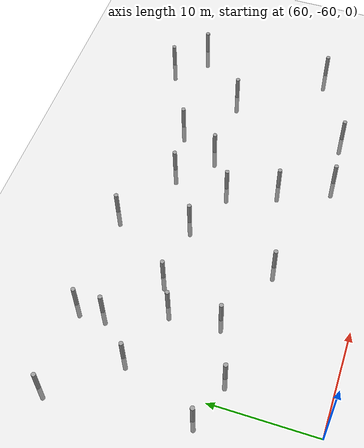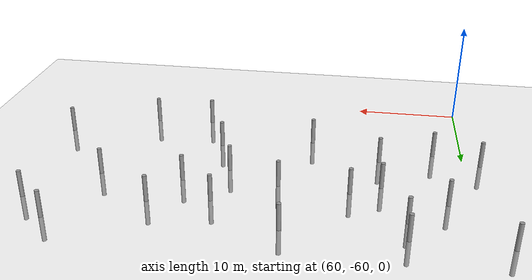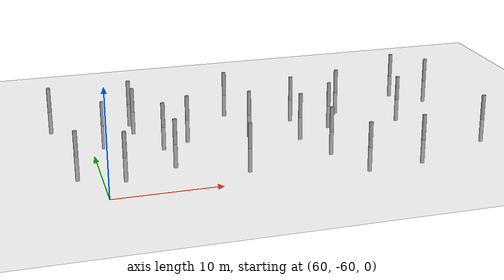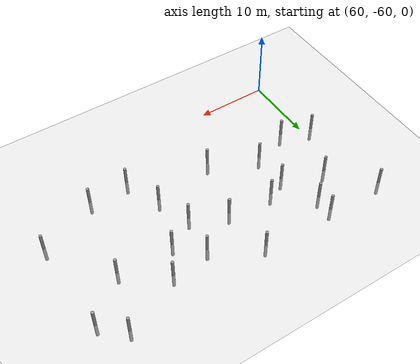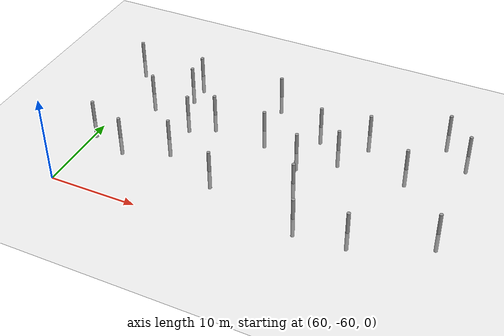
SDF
<sdf version="1.6">
 <world name="default">
  <model name="ground_plane">
   <static>1</static>
   <link name="link">
    <collision name="collision">
     <geometry><plane><normal>0 0 1</normal><size>100 100</size></plane></geometry>
     <surface><friction><ode><mu>100</mu><mu2>50</mu2></ode></friction></surface>
    </collision>
    <visual name="visual">
     <cast_shadows>0</cast_shadows>
     <geometry><plane><normal>0 0 1</normal><size>100 100</size></plane></geometry>
     <material>
      <script><uri>file://media/materials/scripts/gazebo.material</uri><name>Gazebo/Grey</name></script>
     </material>
    </visual>
   </link>
  </model>
  <model name="empty_pillars_10">
   <model name="empty_pillar_clone_10">
    <link name="link">
     <inertial>
      <mass>1</mass>
      <inertia><ixx>0.145833</ixx><ixy>0</ixy><ixz>0</ixz><iyy>0.145833</iyy><iyz>0</iyz><izz>0.125</izz></inertia>
     </inertial>
     <visual name="visual">
      <geometry><cylinder><radius>0.2</radius><length>5</length></cylinder></geometry>
      <material>
       <script><name>Gazebo/Grey</name><uri>file://media/materials/scripts/gazebo.material</uri></script>
       <shader type="vertex"><normal_map>__default__</normal_map></shader>
       <ambient>0.3 0.3 0.3 1</ambient>
       <diffuse>0.7 0.7 0.7 1</diffuse>
       <specular>0.01 0.01 0.01 1</specular>
       <emissive>0 0 0 1</emissive>
      </material>
     </visual>
     <collision name="collision">
      <geometry><cylinder><radius>0.05</radius><length>5</length></cylinder></geometry>
      <surface>
       <friction>
        <ode><mu>1</mu><mu2>1</mu2><fdir1>0 0 0</fdir1><slip1>0</slip1><slip2>0</slip2></ode>
        <torsional>
         <coefficient>1</coefficient>
         <patch_radius>0</patch_radius>
         <surface_radius>0</surface_radius>
         <use_patch_radius>1</use_patch_radius>
         <ode><slip>0</slip></ode>
        </torsional>
       </friction>
       <bounce><restitution_coefficient>0</restitution_coefficient><threshold>1e+06</threshold></bounce>
       <contact>
        <collide_without_contact>0</collide_without_contact>
        <collide_without_contact_bitmask>1</collide_without_contact_bitmask>
        <collide_bitmask>1</collide_bitmask>
        <ode>
         <soft_cfm>0</soft_cfm>
         <soft_erp>0.2</soft_erp>
         <kp>1e+13</kp>
         <kd>1</kd>
         <max_vel>0.01</max_vel>
         <min_depth>0</min_depth>
        </ode>
        <bullet>
         <split_impulse>1</split_impulse>
         <split_impulse_penetration_threshold>-0.01</split_impulse_penetration_threshold>
         <soft_cfm>0</soft_cfm>
         <soft_erp>0.2</soft_erp>
         <kp>1e+13</kp>
         <kd>1</kd>
        </bullet>
       </contact>
      </surface>
     </collision>
    </link>
    <static>0</static>
    <pose>13.5083 -16.8403 0 0 -0 0</pose>
   </model>
   <model name="empty_pillar_clone_11">
    <link name="link">
     <inertial>
      <mass>1</mass>
      <inertia><ixx>0.145833</ixx><ixy>0</ixy><ixz>0</ixz><iyy>0.145833</iyy><iyz>0</iyz><izz>0.125</izz></inertia>
     </inertial>
     <visual name="visual">
      <geometry><cylinder><radius>0.2</radius><length>5</length></cylinder></geometry>
      <material>
       <script><name>Gazebo/Grey</name><uri>file://media/materials/scripts/gazebo.material</uri></script>
       <shader type="vertex"><normal_map>__default__</normal_map></shader>
       <ambient>0.3 0.3 0.3 1</ambient>
       <diffuse>0.7 0.7 0.7 1</diffuse>
       <specular>0.01 0.01 0.01 1</specular>
       <emissive>0 0 0 1</emissive>
      </material>
     </visual>
     <collision name="collision">
      <geometry><cylinder><radius>0.05</radius><length>5</length></cylinder></geometry>
      <surface>
       <friction>
        <ode><mu>1</mu><mu2>1</mu2><fdir1>0 0 0</fdir1><slip1>0</slip1><slip2>0</slip2></ode>
        <torsional>
         <coefficient>1</coefficient>
         <patch_radius>0</patch_radius>
         <surface_radius>0</surface_radius>
         <use_patch_radius>1</use_patch_radius>
         <ode><slip>0</slip></ode>
        </torsional>
       </friction>
       <bounce><restitution_coefficient>0</restitution_coefficient><threshold>1e+06</threshold></bounce>
       <contact>
        <collide_without_contact>0</collide_without_contact>
        <collide_without_contact_bitmask>1</collide_without_contact_bitmask>
        <collide_bitmask>1</collide_bitmask>
        <ode>
         <soft_cfm>0</soft_cfm>
         <soft_erp>0.2</soft_erp>
         <kp>1e+13</kp>
         <kd>1</kd>
         <max_vel>0.01</max_vel>
         <min_depth>0</min_depth>
        </ode>
        <bullet>
         <split_impulse>1</split_impulse>
         <split_impulse_penetration_threshold>-0.01</split_impulse_penetration_threshold>
         <soft_cfm>0</soft_cfm>
         <soft_erp>0.2</soft_erp>
         <kp>1e+13</kp>
         <kd>1</kd>
        </bullet>
       </contact>
      </surface>
     </collision>
    </link>
    <static>0</static>
    <pose>7.98536 -17.8403 0 0 -0 0</pose>
   </model>
   <model name="empty_pillar_clone_12">
    <link name="link">
     <inertial>
      <mass>1</mass>
      <inertia><ixx>0.145833</ixx><ixy>0</ixy><ixz>0</ixz><iyy>0.145833</iyy><iyz>0</iyz><izz>0.125</izz></inertia>
     </inertial>
     <visual name="visual">
      <geometry><cylinder><radius>0.2</radius><length>5</length></cylinder></geometry>
      <material>
       <script><name>Gazebo/Grey</name><uri>file://media/materials/scripts/gazebo.material</uri></script>
       <shader type="vertex"><normal_map>__default__</normal_map></shader>
       <ambient>0.3 0.3 0.3 1</ambient>
       <diffuse>0.7 0.7 0.7 1</diffuse>
       <specular>0.01 0.01 0.01 1</specular>
       <emissive>0 0 0 1</emissive>
      </material>
     </visual>
     <collision name="collision">
      <geometry><cylinder><radius>0.05</radius><length>5</length></cylinder></geometry>
      <surface>
       <friction>
        <ode><mu>1</mu><mu2>1</mu2><fdir1>0 0 0</fdir1><slip1>0</slip1><slip2>0</slip2></ode>
        <torsional>
         <coefficient>1</coefficient>
         <patch_radius>0</patch_radius>
         <surface_radius>0</surface_radius>
         <use_patch_radius>1</use_patch_radius>
         <ode><slip>0</slip></ode>
        </torsional>
       </friction>
       <bounce><restitution_coefficient>0</restitution_coefficient><threshold>1e+06</threshold></bounce>
       <contact>
        <collide_without_contact>0</collide_without_contact>
        <collide_without_contact_bitmask>1</collide_without_contact_bitmask>
        <collide_bitmask>1</collide_bitmask>
        <ode>
         <soft_cfm>0</soft_cfm>
         <soft_erp>0.2</soft_erp>
         <kp>1e+13</kp>
         <kd>1</kd>
         <max_vel>0.01</max_vel>
         <min_depth>0</min_depth>
        </ode>
        <bullet>
         <split_impulse>1</split_impulse>
         <split_impulse_penetration_threshold>-0.01</split_impulse_penetration_threshold>
         <soft_cfm>0</soft_cfm>
         <soft_erp>0.2</soft_erp>
         <kp>1e+13</kp>
         <kd>1</kd>
        </bullet>
       </contact>
      </surface>
     </collision>
    </link>
    <static>0</static>
    <pose>-4.01464 -20.8403 0 0 -0 0</pose>
   </model>
   <model name="empty_pillar_clone_13">
    <link name="link">
     <inertial>
      <mass>1</mass>
      <inertia><ixx>0.145833</ixx><ixy>0</ixy><ixz>0</ixz><iyy>0.145833</iyy><iyz>0</iyz><izz>0.125</izz></inertia>
     </inertial>
     <visual name="visual">
      <geometry><cylinder><radius>0.2</radius><length>5</length></cylinder></geometry>
      <material>
       <script><name>Gazebo/Grey</name><uri>file://media/materials/scripts/gazebo.material</uri></script>
       <shader type="vertex"><normal_map>__default__</normal_map></shader>
       <ambient>0.3 0.3 0.3 1</ambient>
       <diffuse>0.7 0.7 0.7 1</diffuse>
       <specular>0.01 0.01 0.01 1</specular>
       <emissive>0 0 0 1</emissive>
      </material>
     </visual>
     <collision name="collision">
      <geometry><cylinder><radius>0.05</radius><length>5</length></cylinder></geometry>
      <surface>
       <friction>
        <ode><mu>1</mu><mu2>1</mu2><fdir1>0 0 0</fdir1><slip1>0</slip1><slip2>0</slip2></ode>
        <torsional>
         <coefficient>1</coefficient>
         <patch_radius>0</patch_radius>
         <surface_radius>0</surface_radius>
         <use_patch_radius>1</use_patch_radius>
         <ode><slip>0</slip></ode>
        </torsional>
       </friction>
       <bounce><restitution_coefficient>0</restitution_coefficient><threshold>1e+06</threshold></bounce>
       <contact>
        <collide_without_contact>0</collide_without_contact>
        <collide_without_contact_bitmask>1</collide_without_contact_bitmask>
        <collide_bitmask>1</collide_bitmask>
        <ode>
         <soft_cfm>0</soft_cfm>
         <soft_erp>0.2</soft_erp>
         <kp>1e+13</kp>
         <kd>1</kd>
         <max_vel>0.01</max_vel>
         <min_depth>0</min_depth>
        </ode>
        <bullet>
         <split_impulse>1</split_impulse>
         <split_impulse_penetration_threshold>-0.01</split_impulse_penetration_threshold>
         <soft_cfm>0</soft_cfm>
         <soft_erp>0.2</soft_erp>
         <kp>1e+13</kp>
         <kd>1</kd>
        </bullet>
       </contact>
      </surface>
     </collision>
    </link>
    <static>0</static>
    <pose>-9.01464 -14.4259 0 0 -0 0</pose>
   </model>
   <model name="empty_pillar_clone_33">
    <link name="link">
     <inertial>
      <mass>1</mass>
      <inertia><ixx>0.145833</ixx><ixy>0</ixy><ixz>0</ixz><iyy>0.145833</iyy><iyz>0</iyz><izz>0.125</izz></inertia>
     </inertial>
     <visual name="visual">
      <geometry><cylinder><radius>0.2</radius><length>5</length></cylinder></geometry>
      <material>
       <script><name>Gazebo/Grey</name><uri>file://media/materials/scripts/gazebo.material</uri></script>
       <shader type="vertex"><normal_map>__default__</normal_map></shader>
       <ambient>0.3 0.3 0.3 1</ambient>
       <diffuse>0.7 0.7 0.7 1</diffuse>
       <specular>0.01 0.01 0.01 1</specular>
       <emissive>0 0 0 1</emissive>
      </material>
     </visual>
     <collision name="collision">
      <geometry><cylinder><radius>0.05</radius><length>5</length></cylinder></geometry>
      <surface>
       <friction>
        <ode><mu>1</mu><mu2>1</mu2><fdir1>0 0 0</fdir1><slip1>0</slip1><slip2>0</slip2></ode>
        <torsional>
         <coefficient>1</coefficient>
         <patch_radius>0</patch_radius>
         <surface_radius>0</surface_radius>
         <use_patch_radius>1</use_patch_radius>
         <ode><slip>0</slip></ode>
        </torsional>
       </friction>
       <bounce><restitution_coefficient>0</restitution_coefficient><threshold>1e+06</threshold></bounce>
       <contact>
        <collide_without_contact>0</collide_without_contact>
        <collide_without_contact_bitmask>1</collide_without_contact_bitmask>
        <collide_bitmask>1</collide_bitmask>
        <ode>
         <soft_cfm>0</soft_cfm>
         <soft_erp>0.2</soft_erp>
         <kp>1e+13</kp>
         <kd>1</kd>
         <max_vel>0.01</max_vel>
         <min_depth>0</min_depth>
        </ode>
        <bullet>
         <split_impulse>1</split_impulse>
         <split_impulse_penetration_threshold>-0.01</split_impulse_penetration_threshold>
         <soft_cfm>0</soft_cfm>
         <soft_erp>0.2</soft_erp>
         <kp>1e+13</kp>
         <kd>1</kd>
        </bullet>
       </contact>
      </surface>
     </collision>
    </link>
    <static>0</static>
    <pose>21.5621 -13.0704 0 0 -0 0</pose>
   </model>
   <model name="empty_pillar_clone_34">
    <link name="link">
     <inertial>
      <mass>1</mass>
      <inertia><ixx>0.145833</ixx><ixy>0</ixy><ixz>0</ixz><iyy>0.145833</iyy><iyz>0</iyz><izz>0.125</izz></inertia>
     </inertial>
     <visual name="visual">
      <geometry><cylinder><radius>0.2</radius><length>5</length></cylinder></geometry>
      <material>
       <script><name>Gazebo/Grey</name><uri>file://media/materials/scripts/gazebo.material</uri></script>
       <shader type="vertex"><normal_map>__default__</normal_map></shader>
       <ambient>0.3 0.3 0.3 1</ambient>
       <diffuse>0.7 0.7 0.7 1</diffuse>
       <specular>0.01 0.01 0.01 1</specular>
       <emissive>0 0 0 1</emissive>
      </material>
     </visual>
     <collision name="collision">
      <geometry><cylinder><radius>0.05</radius><length>5</length></cylinder></geometry>
      <surface>
       <friction>
        <ode><mu>1</mu><mu2>1</mu2><fdir1>0 0 0</fdir1><slip1>0</slip1><slip2>0</slip2></ode>
        <torsional>
         <coefficient>1</coefficient>
         <patch_radius>0</patch_radius>
         <surface_radius>0</surface_radius>
         <use_patch_radius>1</use_patch_radius>
         <ode><slip>0</slip></ode>
        </torsional>
       </friction>
       <bounce><restitution_coefficient>0</restitution_coefficient><threshold>1e+06</threshold></bounce>
       <contact>
        <collide_without_contact>0</collide_without_contact>
        <collide_without_contact_bitmask>1</collide_without_contact_bitmask>
        <collide_bitmask>1</collide_bitmask>
        <ode>
         <soft_cfm>0</soft_cfm>
         <soft_erp>0.2</soft_erp>
         <kp>1e+13</kp>
         <kd>1</kd>
         <max_vel>0.01</max_vel>
         <min_depth>0</min_depth>
        </ode>
        <bullet>
         <split_impulse>1</split_impulse>
         <split_impulse_penetration_threshold>-0.01</split_impulse_penetration_threshold>
         <soft_cfm>0</soft_cfm>
         <soft_erp>0.2</soft_erp>
         <kp>1e+13</kp>
         <kd>1</kd>
        </bullet>
       </contact>
      </surface>
     </collision>
    </link>
    <static>0</static>
    <pose>19.0861 -20.8946 0 0 -0 0</pose>
   </model>
   <model name="empty_pillar_clone_4">
    <link name="link">
     <inertial>
      <mass>1</mass>
      <inertia><ixx>0.145833</ixx><ixy>0</ixy><ixz>0</ixz><iyy>0.145833</iyy><iyz>0</iyz><izz>0.125</izz></inertia>
     </inertial>
     <visual name="visual">
      <geometry><cylinder><radius>0.2</radius><length>5</length></cylinder></geometry>
      <material>
       <script><name>Gazebo/Grey</name><uri>file://media/materials/scripts/gazebo.material</uri></script>
       <shader type="vertex"><normal_map>__default__</normal_map></shader>
       <ambient>0.3 0.3 0.3 1</ambient>
       <diffuse>0.7 0.7 0.7 1</diffuse>
       <specular>0.01 0.01 0.01 1</specular>
       <emissive>0 0 0 1</emissive>
      </material>
     </visual>
     <collision name="collision">
      <geometry><cylinder><radius>0.05</radius><length>5</length></cylinder></geometry>
      <surface>
       <friction>
        <ode><mu>1</mu><mu2>1</mu2><fdir1>0 0 0</fdir1><slip1>0</slip1><slip2>0</slip2></ode>
        <torsional>
         <coefficient>1</coefficient>
         <patch_radius>0</patch_radius>
         <surface_radius>0</surface_radius>
         <use_patch_radius>1</use_patch_radius>
         <ode><slip>0</slip></ode>
        </torsional>
       </friction>
       <bounce><restitution_coefficient>0</restitution_coefficient><threshold>1e+06</threshold></bounce>
       <contact>
        <collide_without_contact>0</collide_without_contact>
        <collide_without_contact_bitmask>1</collide_without_contact_bitmask>
        <collide_bitmask>1</collide_bitmask>
        <ode>
         <soft_cfm>0</soft_cfm>
         <soft_erp>0.2</soft_erp>
         <kp>1e+13</kp>
         <kd>1</kd>
         <max_vel>0.01</max_vel>
         <min_depth>0</min_depth>
        </ode>
        <bullet>
         <split_impulse>1</split_impulse>
         <split_impulse_penetration_threshold>-0.01</split_impulse_penetration_threshold>
         <soft_cfm>0</soft_cfm>
         <soft_erp>0.2</soft_erp>
         <kp>1e+13</kp>
         <kd>1</kd>
        </bullet>
       </contact>
      </surface>
     </collision>
    </link>
    <static>0</static>
    <pose>1.48428 -14.2998 0 0 -0 0</pose>
   </model>
   <model name="empty_pillar_clone_40">
    <link name="link">
     <inertial>
      <mass>1</mass>
      <inertia><ixx>0.145833</ixx><ixy>0</ixy><ixz>0</ixz><iyy>0.145833</iyy><iyz>0</iyz><izz>0.125</izz></inertia>
     </inertial>
     <visual name="visual">
      <geometry><cylinder><radius>0.2</radius><length>5</length></cylinder></geometry>
      <material>
       <script><name>Gazebo/Grey</name><uri>file://media/materials/scripts/gazebo.material</uri></script>
       <shader type="vertex"><normal_map>__default__</normal_map></shader>
       <ambient>0.3 0.3 0.3 1</ambient>
       <diffuse>0.7 0.7 0.7 1</diffuse>
       <specular>0.01 0.01 0.01 1</specular>
       <emissive>0 0 0 1</emissive>
      </material>
     </visual>
     <collision name="collision">
      <geometry><cylinder><radius>0.05</radius><length>5</length></cylinder></geometry>
      <surface>
       <friction>
        <ode><mu>1</mu><mu2>1</mu2><fdir1>0 0 0</fdir1><slip1>0</slip1><slip2>0</slip2></ode>
        <torsional>
         <coefficient>1</coefficient>
         <patch_radius>0</patch_radius>
         <surface_radius>0</surface_radius>
         <use_patch_radius>1</use_patch_radius>
         <ode><slip>0</slip></ode>
        </torsional>
       </friction>
       <bounce><restitution_coefficient>0</restitution_coefficient><threshold>1e+06</threshold></bounce>
       <contact>
        <collide_without_contact>0</collide_without_contact>
        <collide_without_contact_bitmask>1</collide_without_contact_bitmask>
        <collide_bitmask>1</collide_bitmask>
        <ode>
         <soft_cfm>0</soft_cfm>
         <soft_erp>0.2</soft_erp>
         <kp>1e+13</kp>
         <kd>1</kd>
         <max_vel>0.01</max_vel>
         <min_depth>0</min_depth>
        </ode>
        <bullet>
         <split_impulse>1</split_impulse>
         <split_impulse_penetration_threshold>-0.01</split_impulse_penetration_threshold>
         <soft_cfm>0</soft_cfm>
         <soft_erp>0.2</soft_erp>
         <kp>1e+13</kp>
         <kd>1</kd>
        </bullet>
       </contact>
      </surface>
     </collision>
    </link>
    <static>0</static>
    <pose>-17.318 -14.4851 0 0 -0 0</pose>
   </model>
   <model name="empty_pillar_clone_42">
    <link name="link">
     <inertial>
      <mass>1</mass>
      <inertia><ixx>0.145833</ixx><ixy>0</ixy><ixz>0</ixz><iyy>0.145833</iyy><iyz>0</iyz><izz>0.125</izz></inertia>
     </inertial>
     <visual name="visual">
      <geometry><cylinder><radius>0.2</radius><length>5</length></cylinder></geometry>
      <material>
       <script><name>Gazebo/Grey</name><uri>file://media/materials/scripts/gazebo.material</uri></script>
       <shader type="vertex"><normal_map>__default__</normal_map></shader>
       <ambient>0.3 0.3 0.3 1</ambient>
       <diffuse>0.7 0.7 0.7 1</diffuse>
       <specular>0.01 0.01 0.01 1</specular>
       <emissive>0 0 0 1</emissive>
      </material>
     </visual>
     <collision name="collision">
      <geometry><cylinder><radius>0.05</radius><length>5</length></cylinder></geometry>
      <surface>
       <friction>
        <ode><mu>1</mu><mu2>1</mu2><fdir1>0 0 0</fdir1><slip1>0</slip1><slip2>0</slip2></ode>
        <torsional>
         <coefficient>1</coefficient>
         <patch_radius>0</patch_radius>
         <surface_radius>0</surface_radius>
         <use_patch_radius>1</use_patch_radius>
         <ode><slip>0</slip></ode>
        </torsional>
       </friction>
       <bounce><restitution_coefficient>0</restitution_coefficient><threshold>1e+06</threshold></bounce>
       <contact>
        <collide_without_contact>0</collide_without_contact>
        <collide_without_contact_bitmask>1</collide_without_contact_bitmask>
        <collide_bitmask>1</collide_bitmask>
        <ode>
         <soft_cfm>0</soft_cfm>
         <soft_erp>0.2</soft_erp>
         <kp>1e+13</kp>
         <kd>1</kd>
         <max_vel>0.01</max_vel>
         <min_depth>0</min_depth>
        </ode>
        <bullet>
         <split_impulse>1</split_impulse>
         <split_impulse_penetration_threshold>-0.01</split_impulse_penetration_threshold>
         <soft_cfm>0</soft_cfm>
         <soft_erp>0.2</soft_erp>
         <kp>1e+13</kp>
         <kd>1</kd>
        </bullet>
       </contact>
      </surface>
     </collision>
    </link>
    <static>0</static>
    <pose>-12.5409 -20.2416 0 0 -0 0</pose>
   </model>
   <model name="empty_pillar_clone_44">
    <link name="link">
     <inertial>
      <mass>1</mass>
      <inertia><ixx>0.145833</ixx><ixy>0</ixy><ixz>0</ixz><iyy>0.145833</iyy><iyz>0</iyz><izz>0.125</izz></inertia>
     </inertial>
     <visual name="visual">
      <geometry><cylinder><radius>0.2</radius><length>5</length></cylinder></geometry>
      <material>
       <script><name>Gazebo/Grey</name><uri>file://media/materials/scripts/gazebo.material</uri></script>
       <shader type="vertex"><normal_map>__default__</normal_map></shader>
       <ambient>0.3 0.3 0.3 1</ambient>
       <diffuse>0.7 0.7 0.7 1</diffuse>
       <specular>0.01 0.01 0.01 1</specular>
       <emissive>0 0 0 1</emissive>
      </material>
     </visual>
     <collision name="collision">
      <geometry><cylinder><radius>0.05</radius><length>5</length></cylinder></geometry>
      <surface>
       <friction>
        <ode><mu>1</mu><mu2>1</mu2><fdir1>0 0 0</fdir1><slip1>0</slip1><slip2>0</slip2></ode>
        <torsional>
         <coefficient>1</coefficient>
         <patch_radius>0</patch_radius>
         <surface_radius>0</surface_radius>
         <use_patch_radius>1</use_patch_radius>
         <ode><slip>0</slip></ode>
        </torsional>
       </friction>
       <bounce><restitution_coefficient>0</restitution_coefficient><threshold>1e+06</threshold></bounce>
       <contact>
        <collide_without_contact>0</collide_without_contact>
        <collide_without_contact_bitmask>1</collide_without_contact_bitmask>
        <collide_bitmask>1</collide_bitmask>
        <ode>
         <soft_cfm>0</soft_cfm>
         <soft_erp>0.2</soft_erp>
         <kp>1e+13</kp>
         <kd>1</kd>
         <max_vel>0.01</max_vel>
         <min_depth>0</min_depth>
        </ode>
        <bullet>
         <split_impulse>1</split_impulse>
         <split_impulse_penetration_threshold>-0.01</split_impulse_penetration_threshold>
         <soft_cfm>0</soft_cfm>
         <soft_erp>0.2</soft_erp>
         <kp>1e+13</kp>
         <kd>1</kd>
        </bullet>
       </contact>
      </surface>
     </collision>
    </link>
    <static>0</static>
    <pose>-6.78285 -22.2729 0 0 -0 0</pose>
   </model>
   <model name="empty_pillar_clone_45">
    <link name="link">
     <inertial>
      <mass>1</mass>
      <inertia><ixx>0.145833</ixx><ixy>0</ixy><ixz>0</ixz><iyy>0.145833</iyy><iyz>0</iyz><izz>0.125</izz></inertia>
     </inertial>
     <visual name="visual">
      <geometry><cylinder><radius>0.2</radius><length>5</length></cylinder></geometry>
      <material>
       <script><name>Gazebo/Grey</name><uri>file://media/materials/scripts/gazebo.material</uri></script>
       <shader type="vertex"><normal_map>__default__</normal_map></shader>
       <ambient>0.3 0.3 0.3 1</ambient>
       <diffuse>0.7 0.7 0.7 1</diffuse>
       <specular>0.01 0.01 0.01 1</specular>
       <emissive>0 0 0 1</emissive>
      </material>
     </visual>
     <collision name="collision">
      <geometry><cylinder><radius>0.05</radius><length>5</length></cylinder></geometry>
      <surface>
       <friction>
        <ode><mu>1</mu><mu2>1</mu2><fdir1>0 0 0</fdir1><slip1>0</slip1><slip2>0</slip2></ode>
        <torsional>
         <coefficient>1</coefficient>
         <patch_radius>0</patch_radius>
         <surface_radius>0</surface_radius>
         <use_patch_radius>1</use_patch_radius>
         <ode><slip>0</slip></ode>
        </torsional>
       </friction>
       <bounce><restitution_coefficient>0</restitution_coefficient><threshold>1e+06</threshold></bounce>
       <contact>
        <collide_without_contact>0</collide_without_contact>
        <collide_without_contact_bitmask>1</collide_without_contact_bitmask>
        <collide_bitmask>1</collide_bitmask>
        <ode>
         <soft_cfm>0</soft_cfm>
         <soft_erp>0.2</soft_erp>
         <kp>1e+13</kp>
         <kd>1</kd>
         <max_vel>0.01</max_vel>
         <min_depth>0</min_depth>
        </ode>
        <bullet>
         <split_impulse>1</split_impulse>
         <split_impulse_penetration_threshold>-0.01</split_impulse_penetration_threshold>
         <soft_cfm>0</soft_cfm>
         <soft_erp>0.2</soft_erp>
         <kp>1e+13</kp>
         <kd>1</kd>
        </bullet>
       </contact>
      </surface>
     </collision>
    </link>
    <static>0</static>
    <pose>-9.01076 -16.9307 0 0 -0 0</pose>
   </model>
   <model name="empty_pillar_clone_46">
    <link name="link">
     <inertial>
      <mass>1</mass>
      <inertia><ixx>0.145833</ixx><ixy>0</ixy><ixz>0</ixz><iyy>0.145833</iyy><iyz>0</iyz><izz>0.125</izz></inertia>
     </inertial>
     <visual name="visual">
      <geometry><cylinder><radius>0.2</radius><length>5</length></cylinder></geometry>
      <material>
       <script><name>Gazebo/Grey</name><uri>file://media/materials/scripts/gazebo.material</uri></script>
       <shader type="vertex"><normal_map>__default__</normal_map></shader>
       <ambient>0.3 0.3 0.3 1</ambient>
       <diffuse>0.7 0.7 0.7 1</diffuse>
       <specular>0.01 0.01 0.01 1</specular>
       <emissive>0 0 0 1</emissive>
      </material>
     </visual>
     <collision name="collision">
      <geometry><cylinder><radius>0.05</radius><length>5</length></cylinder></geometry>
      <surface>
       <friction>
        <ode><mu>1</mu><mu2>1</mu2><fdir1>0 0 0</fdir1><slip1>0</slip1><slip2>0</slip2></ode>
        <torsional>
         <coefficient>1</coefficient>
         <patch_radius>0</patch_radius>
         <surface_radius>0</surface_radius>
         <use_patch_radius>1</use_patch_radius>
         <ode><slip>0</slip></ode>
        </torsional>
       </friction>
       <bounce><restitution_coefficient>0</restitution_coefficient><threshold>1e+06</threshold></bounce>
       <contact>
        <collide_without_contact>0</collide_without_contact>
        <collide_without_contact_bitmask>1</collide_without_contact_bitmask>
        <collide_bitmask>1</collide_bitmask>
        <ode>
         <soft_cfm>0</soft_cfm>
         <soft_erp>0.2</soft_erp>
         <kp>1e+13</kp>
         <kd>1</kd>
         <max_vel>0.01</max_vel>
         <min_depth>0</min_depth>
        </ode>
        <bullet>
         <split_impulse>1</split_impulse>
         <split_impulse_penetration_threshold>-0.01</split_impulse_penetration_threshold>
         <soft_cfm>0</soft_cfm>
         <soft_erp>0.2</soft_erp>
         <kp>1e+13</kp>
         <kd>1</kd>
        </bullet>
       </contact>
      </surface>
     </collision>
    </link>
    <static>0</static>
    <pose>2.45033 -21.185 0 0 -0 0</pose>
   </model>
   <model name="empty_pillar_clone_52">
    <link name="link">
     <inertial>
      <mass>1</mass>
      <inertia><ixx>0.145833</ixx><ixy>0</ixy><ixz>0</ixz><iyy>0.145833</iyy><iyz>0</iyz><izz>0.125</izz></inertia>
     </inertial>
     <visual name="visual">
      <geometry><cylinder><radius>0.2</radius><length>5</length></cylinder></geometry>
      <material>
       <script><name>Gazebo/Grey</name><uri>file://media/materials/scripts/gazebo.material</uri></script>
       <shader type="vertex"><normal_map>__default__</normal_map></shader>
       <ambient>0.3 0.3 0.3 1</ambient>
       <diffuse>0.7 0.7 0.7 1</diffuse>
       <specular>0.01 0.01 0.01 1</specular>
       <emissive>0 0 0 1</emissive>
      </material>
     </visual>
     <collision name="collision">
      <geometry><cylinder><radius>0.05</radius><length>5</length></cylinder></geometry>
      <surface>
       <friction>
        <ode><mu>1</mu><mu2>1</mu2><fdir1>0 0 0</fdir1><slip1>0</slip1><slip2>0</slip2></ode>
        <torsional>
         <coefficient>1</coefficient>
         <patch_radius>0</patch_radius>
         <surface_radius>0</surface_radius>
         <use_patch_radius>1</use_patch_radius>
         <ode><slip>0</slip></ode>
        </torsional>
       </friction>
       <bounce><restitution_coefficient>0</restitution_coefficient><threshold>1e+06</threshold></bounce>
       <contact>
        <collide_without_contact>0</collide_without_contact>
        <collide_without_contact_bitmask>1</collide_without_contact_bitmask>
        <collide_bitmask>1</collide_bitmask>
        <ode>
         <soft_cfm>0</soft_cfm>
         <soft_erp>0.2</soft_erp>
         <kp>1e+13</kp>
         <kd>1</kd>
         <max_vel>0.01</max_vel>
         <min_depth>0</min_depth>
        </ode>
        <bullet>
         <split_impulse>1</split_impulse>
         <split_impulse_penetration_threshold>-0.01</split_impulse_penetration_threshold>
         <soft_cfm>0</soft_cfm>
         <soft_erp>0.2</soft_erp>
         <kp>1e+13</kp>
         <kd>1</kd>
        </bullet>
       </contact>
      </surface>
     </collision>
    </link>
    <static>0</static>
    <pose>11.2833 -20.8743 0 0 -0 0</pose>
   </model>
   <model name="empty_pillar_clone_53">
    <link name="link">
     <inertial>
      <mass>1</mass>
      <inertia><ixx>0.145833</ixx><ixy>0</ixy><ixz>0</ixz><iyy>0.145833</iyy><iyz>0</iyz><izz>0.125</izz></inertia>
     </inertial>
     <visual name="visual">
      <geometry><cylinder><radius>0.2</radius><length>5</length></cylinder></geometry>
      <material>
       <script><name>Gazebo/Grey</name><uri>file://media/materials/scripts/gazebo.material</uri></script>
       <shader type="vertex"><normal_map>__default__</normal_map></shader>
       <ambient>0.3 0.3 0.3 1</ambient>
       <diffuse>0.7 0.7 0.7 1</diffuse>
       <specular>0.01 0.01 0.01 1</specular>
       <emissive>0 0 0 1</emissive>
      </material>
     </visual>
     <collision name="collision">
      <geometry><cylinder><radius>0.05</radius><length>5</length></cylinder></geometry>
      <surface>
       <friction>
        <ode><mu>1</mu><mu2>1</mu2><fdir1>0 0 0</fdir1><slip1>0</slip1><slip2>0</slip2></ode>
        <torsional>
         <coefficient>1</coefficient>
         <patch_radius>0</patch_radius>
         <surface_radius>0</surface_radius>
         <use_patch_radius>1</use_patch_radius>
         <ode><slip>0</slip></ode>
        </torsional>
       </friction>
       <bounce><restitution_coefficient>0</restitution_coefficient><threshold>1e+06</threshold></bounce>
       <contact>
        <collide_without_contact>0</collide_without_contact>
        <collide_without_contact_bitmask>1</collide_without_contact_bitmask>
        <collide_bitmask>1</collide_bitmask>
        <ode>
         <soft_cfm>0</soft_cfm>
         <soft_erp>0.2</soft_erp>
         <kp>1e+13</kp>
         <kd>1</kd>
         <max_vel>0.01</max_vel>
         <min_depth>0</min_depth>
        </ode>
        <bullet>
         <split_impulse>1</split_impulse>
         <split_impulse_penetration_threshold>-0.01</split_impulse_penetration_threshold>
         <soft_cfm>0</soft_cfm>
         <soft_erp>0.2</soft_erp>
         <kp>1e+13</kp>
         <kd>1</kd>
        </bullet>
       </contact>
      </surface>
     </collision>
    </link>
    <static>0</static>
    <pose>7.32522 -23.3523 0 0 -0 0</pose>
   </model>
   <model name="empty_pillar_clone_54">
    <link name="link">
     <inertial>
      <mass>1</mass>
      <inertia><ixx>0.145833</ixx><ixy>0</ixy><ixz>0</ixz><iyy>0.145833</iyy><iyz>0</iyz><izz>0.125</izz></inertia>
     </inertial>
     <visual name="visual">
      <geometry><cylinder><radius>0.2</radius><length>5</length></cylinder></geometry>
      <material>
       <script><name>Gazebo/Grey</name><uri>file://media/materials/scripts/gazebo.material</uri></script>
       <shader type="vertex"><normal_map>__default__</normal_map></shader>
       <ambient>0.3 0.3 0.3 1</ambient>
       <diffuse>0.7 0.7 0.7 1</diffuse>
       <specular>0.01 0.01 0.01 1</specular>
       <emissive>0 0 0 1</emissive>
      </material>
     </visual>
     <collision name="collision">
      <geometry><cylinder><radius>0.05</radius><length>5</length></cylinder></geometry>
      <surface>
       <friction>
        <ode><mu>1</mu><mu2>1</mu2><fdir1>0 0 0</fdir1><slip1>0</slip1><slip2>0</slip2></ode>
        <torsional>
         <coefficient>1</coefficient>
         <patch_radius>0</patch_radius>
         <surface_radius>0</surface_radius>
         <use_patch_radius>1</use_patch_radius>
         <ode><slip>0</slip></ode>
        </torsional>
       </friction>
       <bounce><restitution_coefficient>0</restitution_coefficient><threshold>1e+06</threshold></bounce>
       <contact>
        <collide_without_contact>0</collide_without_contact>
        <collide_without_contact_bitmask>1</collide_without_contact_bitmask>
        <collide_bitmask>1</collide_bitmask>
        <ode>
         <soft_cfm>0</soft_cfm>
         <soft_erp>0.2</soft_erp>
         <kp>1e+13</kp>
         <kd>1</kd>
         <max_vel>0.01</max_vel>
         <min_depth>0</min_depth>
        </ode>
        <bullet>
         <split_impulse>1</split_impulse>
         <split_impulse_penetration_threshold>-0.01</split_impulse_penetration_threshold>
         <soft_cfm>0</soft_cfm>
         <soft_erp>0.2</soft_erp>
         <kp>1e+13</kp>
         <kd>1</kd>
        </bullet>
       </contact>
      </surface>
     </collision>
    </link>
    <static>0</static>
    <pose>24.557 -15.8784 0 0 -0 0</pose>
   </model>
   <static>0</static>
   <pose>74.3997 -21.7718 0 0 -0 0</pose>
  </model>
  <model name="empty_pillars_13">
   <model name="empty_pillar_clone_20">
    <link name="link">
     <inertial>
      <mass>1</mass>
      <inertia><ixx>0.145833</ixx><ixy>0</ixy><ixz>0</ixz><iyy>0.145833</iyy><iyz>0</iyz><izz>0.125</izz></inertia>
     </inertial>
     <visual name="visual">
      <geometry><cylinder><radius>0.2</radius><length>5</length></cylinder></geometry>
      <material>
       <script><name>Gazebo/Grey</name><uri>file://media/materials/scripts/gazebo.material</uri></script>
       <shader type="vertex"><normal_map>__default__</normal_map></shader>
       <ambient>0.3 0.3 0.3 1</ambient>
       <diffuse>0.7 0.7 0.7 1</diffuse>
       <specular>0.01 0.01 0.01 1</specular>
       <emissive>0 0 0 1</emissive>
      </material>
     </visual>
     <collision name="collision">
      <geometry><cylinder><radius>0.05</radius><length>5</length></cylinder></geometry>
      <surface>
       <friction>
        <ode><mu>1</mu><mu2>1</mu2><fdir1>0 0 0</fdir1><slip1>0</slip1><slip2>0</slip2></ode>
        <torsional>
         <coefficient>1</coefficient>
         <patch_radius>0</patch_radius>
         <surface_radius>0</surface_radius>
         <use_patch_radius>1</use_patch_radius>
         <ode><slip>0</slip></ode>
        </torsional>
       </friction>
       <bounce><restitution_coefficient>0</restitution_coefficient><threshold>1e+06</threshold></bounce>
       <contact>
        <collide_without_contact>0</collide_without_contact>
        <collide_without_contact_bitmask>1</collide_without_contact_bitmask>
        <collide_bitmask>1</collide_bitmask>
        <ode>
         <soft_cfm>0</soft_cfm>
         <soft_erp>0.2</soft_erp>
         <kp>1e+13</kp>
         <kd>1</kd>
         <max_vel>0.01</max_vel>
         <min_depth>0</min_depth>
        </ode>
        <bullet>
         <split_impulse>1</split_impulse>
         <split_impulse_penetration_threshold>-0.01</split_impulse_penetration_threshold>
         <soft_cfm>0</soft_cfm>
         <soft_erp>0.2</soft_erp>
         <kp>1e+13</kp>
         <kd>1</kd>
        </bullet>
       </contact>
      </surface>
     </collision>
    </link>
    <static>0</static>
    <pose>-13.0146 19.1597 0 0 -0 0</pose>
   </model>
   <model name="empty_pillar_clone_22">
    <link name="link">
     <inertial>
      <mass>1</mass>
      <inertia><ixx>0.145833</ixx><ixy>0</ixy><ixz>0</ixz><iyy>0.145833</iyy><iyz>0</iyz><izz>0.125</izz></inertia>
     </inertial>
     <visual name="visual">
      <geometry><cylinder><radius>0.2</radius><length>5</length></cylinder></geometry>
      <material>
       <script><name>Gazebo/Grey</name><uri>file://media/materials/scripts/gazebo.material</uri></script>
       <shader type="vertex"><normal_map>__default__</normal_map></shader>
       <ambient>0.3 0.3 0.3 1</ambient>
       <diffuse>0.7 0.7 0.7 1</diffuse>
       <specular>0.01 0.01 0.01 1</specular>
       <emissive>0 0 0 1</emissive>
      </material>
     </visual>
     <collision name="collision">
      <geometry><cylinder><radius>0.05</radius><length>5</length></cylinder></geometry>
      <surface>
       <friction>
        <ode><mu>1</mu><mu2>1</mu2><fdir1>0 0 0</fdir1><slip1>0</slip1><slip2>0</slip2></ode>
        <torsional>
         <coefficient>1</coefficient>
         <patch_radius>0</patch_radius>
         <surface_radius>0</surface_radius>
         <use_patch_radius>1</use_patch_radius>
         <ode><slip>0</slip></ode>
        </torsional>
       </friction>
       <bounce><restitution_coefficient>0</restitution_coefficient><threshold>1e+06</threshold></bounce>
       <contact>
        <collide_without_contact>0</collide_without_contact>
        <collide_without_contact_bitmask>1</collide_without_contact_bitmask>
        <collide_bitmask>1</collide_bitmask>
        <ode>
         <soft_cfm>0</soft_cfm>
         <soft_erp>0.2</soft_erp>
         <kp>1e+13</kp>
         <kd>1</kd>
         <max_vel>0.01</max_vel>
         <min_depth>0</min_depth>
        </ode>
        <bullet>
         <split_impulse>1</split_impulse>
         <split_impulse_penetration_threshold>-0.01</split_impulse_penetration_threshold>
         <soft_cfm>0</soft_cfm>
         <soft_erp>0.2</soft_erp>
         <kp>1e+13</kp>
         <kd>1</kd>
        </bullet>
       </contact>
      </surface>
     </collision>
    </link>
    <static>0</static>
    <pose>-17.3667 20.5782 0 0 -0 0</pose>
   </model>
   <model name="empty_pillar_clone_23">
    <link name="link">
     <inertial>
      <mass>1</mass>
      <inertia><ixx>0.145833</ixx><ixy>0</ixy><ixz>0</ixz><iyy>0.145833</iyy><iyz>0</iyz><izz>0.125</izz></inertia>
     </inertial>
     <visual name="visual">
      <geometry><cylinder><radius>0.2</radius><length>5</length></cylinder></geometry>
      <material>
       <script><name>Gazebo/Grey</name><uri>file://media/materials/scripts/gazebo.material</uri></script>
       <shader type="vertex"><normal_map>__default__</normal_map></shader>
       <ambient>0.3 0.3 0.3 1</ambient>
       <diffuse>0.7 0.7 0.7 1</diffuse>
       <specular>0.01 0.01 0.01 1</specular>
       <emissive>0 0 0 1</emissive>
      </material>
     </visual>
     <collision name="collision">
      <geometry><cylinder><radius>0.05</radius><length>5</length></cylinder></geometry>
      <surface>
       <friction>
        <ode><mu>1</mu><mu2>1</mu2><fdir1>0 0 0</fdir1><slip1>0</slip1><slip2>0</slip2></ode>
        <torsional>
         <coefficient>1</coefficient>
         <patch_radius>0</patch_radius>
         <surface_radius>0</surface_radius>
         <use_patch_radius>1</use_patch_radius>
         <ode><slip>0</slip></ode>
        </torsional>
       </friction>
       <bounce><restitution_coefficient>0</restitution_coefficient><threshold>1e+06</threshold></bounce>
       <contact>
        <collide_without_contact>0</collide_without_contact>
        <collide_without_contact_bitmask>1</collide_without_contact_bitmask>
        <collide_bitmask>1</collide_bitmask>
        <ode>
         <soft_cfm>0</soft_cfm>
         <soft_erp>0.2</soft_erp>
         <kp>1e+13</kp>
         <kd>1</kd>
         <max_vel>0.01</max_vel>
         <min_depth>0</min_depth>
        </ode>
        <bullet>
         <split_impulse>1</split_impulse>
         <split_impulse_penetration_threshold>-0.01</split_impulse_penetration_threshold>
         <soft_cfm>0</soft_cfm>
         <soft_erp>0.2</soft_erp>
         <kp>1e+13</kp>
         <kd>1</kd>
        </bullet>
       </contact>
      </surface>
     </collision>
    </link>
    <static>0</static>
    <pose>-1.21984 18.1273 0 0 -0 0</pose>
   </model>
   <model name="empty_pillar_clone_25">
    <link name="link">
     <inertial>
      <mass>1</mass>
      <inertia><ixx>0.145833</ixx><ixy>0</ixy><ixz>0</ixz><iyy>0.145833</iyy><iyz>0</iyz><izz>0.125</izz></inertia>
     </inertial>
     <visual name="visual">
      <geometry><cylinder><radius>0.2</radius><length>5</length></cylinder></geometry>
      <material>
       <script><name>Gazebo/Grey</name><uri>file://media/materials/scripts/gazebo.material</uri></script>
       <shader type="vertex"><normal_map>__default__</normal_map></shader>
       <ambient>0.3 0.3 0.3 1</ambient>
       <diffuse>0.7 0.7 0.7 1</diffuse>
       <specular>0.01 0.01 0.01 1</specular>
       <emissive>0 0 0 1</emissive>
      </material>
     </visual>
     <collision name="collision">
      <geometry><cylinder><radius>0.05</radius><length>5</length></cylinder></geometry>
      <surface>
       <friction>
        <ode><mu>1</mu><mu2>1</mu2><fdir1>0 0 0</fdir1><slip1>0</slip1><slip2>0</slip2></ode>
        <torsional>
         <coefficient>1</coefficient>
         <patch_radius>0</patch_radius>
         <surface_radius>0</surface_radius>
         <use_patch_radius>1</use_patch_radius>
         <ode><slip>0</slip></ode>
        </torsional>
       </friction>
       <bounce><restitution_coefficient>0</restitution_coefficient><threshold>1e+06</threshold></bounce>
       <contact>
        <collide_without_contact>0</collide_without_contact>
        <collide_without_contact_bitmask>1</collide_without_contact_bitmask>
        <collide_bitmask>1</collide_bitmask>
        <ode>
         <soft_cfm>0</soft_cfm>
         <soft_erp>0.2</soft_erp>
         <kp>1e+13</kp>
         <kd>1</kd>
         <max_vel>0.01</max_vel>
         <min_depth>0</min_depth>
        </ode>
        <bullet>
         <split_impulse>1</split_impulse>
         <split_impulse_penetration_threshold>-0.01</split_impulse_penetration_threshold>
         <soft_cfm>0</soft_cfm>
         <soft_erp>0.2</soft_erp>
         <kp>1e+13</kp>
         <kd>1</kd>
        </bullet>
       </contact>
      </surface>
     </collision>
    </link>
    <static>0</static>
    <pose>-7.86239 21.1314 0 0 -0 0</pose>
   </model>
   <model name="empty_pillar_clone_26">
    <link name="link">
     <inertial>
      <mass>1</mass>
      <inertia><ixx>0.145833</ixx><ixy>0</ixy><ixz>0</ixz><iyy>0.145833</iyy><iyz>0</iyz><izz>0.125</izz></inertia>
     </inertial>
     <visual name="visual">
      <geometry><cylinder><radius>0.2</radius><length>5</length></cylinder></geometry>
      <material>
       <script><name>Gazebo/Grey</name><uri>file://media/materials/scripts/gazebo.material</uri></script>
       <shader type="vertex"><normal_map>__default__</normal_map></shader>
       <ambient>0.3 0.3 0.3 1</ambient>
       <diffuse>0.7 0.7 0.7 1</diffuse>
       <specular>0.01 0.01 0.01 1</specular>
       <emissive>0 0 0 1</emissive>
      </material>
     </visual>
     <collision name="collision">
      <geometry><cylinder><radius>0.05</radius><length>5</length></cylinder></geometry>
      <surface>
       <friction>
        <ode><mu>1</mu><mu2>1</mu2><fdir1>0 0 0</fdir1><slip1>0</slip1><slip2>0</slip2></ode>
        <torsional>
         <coefficient>1</coefficient>
         <patch_radius>0</patch_radius>
         <surface_radius>0</surface_radius>
         <use_patch_radius>1</use_patch_radius>
         <ode><slip>0</slip></ode>
        </torsional>
       </friction>
       <bounce><restitution_coefficient>0</restitution_coefficient><threshold>1e+06</threshold></bounce>
       <contact>
        <collide_without_contact>0</collide_without_contact>
        <collide_without_contact_bitmask>1</collide_without_contact_bitmask>
        <collide_bitmask>1</collide_bitmask>
        <ode>
         <soft_cfm>0</soft_cfm>
         <soft_erp>0.2</soft_erp>
         <kp>1e+13</kp>
         <kd>1</kd>
         <max_vel>0.01</max_vel>
         <min_depth>0</min_depth>
        </ode>
        <bullet>
         <split_impulse>1</split_impulse>
         <split_impulse_penetration_threshold>-0.01</split_impulse_penetration_threshold>
         <soft_cfm>0</soft_cfm>
         <soft_erp>0.2</soft_erp>
         <kp>1e+13</kp>
         <kd>1</kd>
        </bullet>
       </contact>
      </surface>
     </collision>
    </link>
    <static>0</static>
    <pose>7.70652 20.1444 0 0 -0 0</pose>
   </model>
   <model name="empty_pillar_clone_28">
    <link name="link">
     <inertial>
      <mass>1</mass>
      <inertia><ixx>0.145833</ixx><ixy>0</ixy><ixz>0</ixz><iyy>0.145833</iyy><iyz>0</iyz><izz>0.125</izz></inertia>
     </inertial>
     <visual name="visual">
      <geometry><cylinder><radius>0.2</radius><length>5</length></cylinder></geometry>
      <material>
       <script><name>Gazebo/Grey</name><uri>file://media/materials/scripts/gazebo.material</uri></script>
       <shader type="vertex"><normal_map>__default__</normal_map></shader>
       <ambient>0.3 0.3 0.3 1</ambient>
       <diffuse>0.7 0.7 0.7 1</diffuse>
       <specular>0.01 0.01 0.01 1</specular>
       <emissive>0 0 0 1</emissive>
      </material>
     </visual>
     <collision name="collision">
      <geometry><cylinder><radius>0.05</radius><length>5</length></cylinder></geometry>
      <surface>
       <friction>
        <ode><mu>1</mu><mu2>1</mu2><fdir1>0 0 0</fdir1><slip1>0</slip1><slip2>0</slip2></ode>
        <torsional>
         <coefficient>1</coefficient>
         <patch_radius>0</patch_radius>
         <surface_radius>0</surface_radius>
         <use_patch_radius>1</use_patch_radius>
         <ode><slip>0</slip></ode>
        </torsional>
       </friction>
       <bounce><restitution_coefficient>0</restitution_coefficient><threshold>1e+06</threshold></bounce>
       <contact>
        <collide_without_contact>0</collide_without_contact>
        <collide_without_contact_bitmask>1</collide_without_contact_bitmask>
        <collide_bitmask>1</collide_bitmask>
        <ode>
         <soft_cfm>0</soft_cfm>
         <soft_erp>0.2</soft_erp>
         <kp>1e+13</kp>
         <kd>1</kd>
         <max_vel>0.01</max_vel>
         <min_depth>0</min_depth>
        </ode>
        <bullet>
         <split_impulse>1</split_impulse>
         <split_impulse_penetration_threshold>-0.01</split_impulse_penetration_threshold>
         <soft_cfm>0</soft_cfm>
         <soft_erp>0.2</soft_erp>
         <kp>1e+13</kp>
         <kd>1</kd>
        </bullet>
       </contact>
      </surface>
     </collision>
    </link>
    <static>0</static>
    <pose>15.5447 15.5867 0 0 -0 0</pose>
   </model>
   <model name="empty_pillar_clone_30">
    <link name="link">
     <inertial>
      <mass>1</mass>
      <inertia><ixx>0.145833</ixx><ixy>0</ixy><ixz>0</ixz><iyy>0.145833</iyy><iyz>0</iyz><izz>0.125</izz></inertia>
     </inertial>
     <visual name="visual">
      <geometry><cylinder><radius>0.2</radius><length>5</length></cylinder></geometry>
      <material>
       <script><name>Gazebo/Grey</name><uri>file://media/materials/scripts/gazebo.material</uri></script>
       <shader type="vertex"><normal_map>__default__</normal_map></shader>
       <ambient>0.3 0.3 0.3 1</ambient>
       <diffuse>0.7 0.7 0.7 1</diffuse>
       <specular>0.01 0.01 0.01 1</specular>
       <emissive>0 0 0 1</emissive>
      </material>
     </visual>
     <collision name="collision">
      <geometry><cylinder><radius>0.05</radius><length>5</length></cylinder></geometry>
      <surface>
       <friction>
        <ode><mu>1</mu><mu2>1</mu2><fdir1>0 0 0</fdir1><slip1>0</slip1><slip2>0</slip2></ode>
        <torsional>
         <coefficient>1</coefficient>
         <patch_radius>0</patch_radius>
         <surface_radius>0</surface_radius>
         <use_patch_radius>1</use_patch_radius>
         <ode><slip>0</slip></ode>
        </torsional>
       </friction>
       <bounce><restitution_coefficient>0</restitution_coefficient><threshold>1e+06</threshold></bounce>
       <contact>
        <collide_without_contact>0</collide_without_contact>
        <collide_without_contact_bitmask>1</collide_without_contact_bitmask>
        <collide_bitmask>1</collide_bitmask>
        <ode>
         <soft_cfm>0</soft_cfm>
         <soft_erp>0.2</soft_erp>
         <kp>1e+13</kp>
         <kd>1</kd>
         <max_vel>0.01</max_vel>
         <min_depth>0</min_depth>
        </ode>
        <bullet>
         <split_impulse>1</split_impulse>
         <split_impulse_penetration_threshold>-0.01</split_impulse_penetration_threshold>
         <soft_cfm>0</soft_cfm>
         <soft_erp>0.2</soft_erp>
         <kp>1e+13</kp>
         <kd>1</kd>
        </bullet>
       </contact>
      </surface>
     </collision>
    </link>
    <static>0</static>
    <pose>23.752 19.2231 0 0 -0 0</pose>
   </model>
   <model name="empty_pillar_clone_49">
    <link name="link">
     <inertial>
      <mass>1</mass>
      <inertia><ixx>0.145833</ixx><ixy>0</ixy><ixz>0</ixz><iyy>0.145833</iyy><iyz>0</iyz><izz>0.125</izz></inertia>
     </inertial>
     <visual name="visual">
      <geometry><cylinder><radius>0.2</radius><length>5</length></cylinder></geometry>
      <material>
       <script><name>Gazebo/Grey</name><uri>file://media/materials/scripts/gazebo.material</uri></script>
       <shader type="vertex"><normal_map>__default__</normal_map></shader>
       <ambient>0.3 0.3 0.3 1</ambient>
       <diffuse>0.7 0.7 0.7 1</diffuse>
       <specular>0.01 0.01 0.01 1</specular>
       <emissive>0 0 0 1</emissive>
      </material>
     </visual>
     <collision name="collision">
      <geometry><cylinder><radius>0.05</radius><length>5</length></cylinder></geometry>
      <surface>
       <friction>
        <ode><mu>1</mu><mu2>1</mu2><fdir1>0 0 0</fdir1><slip1>0</slip1><slip2>0</slip2></ode>
        <torsional>
         <coefficient>1</coefficient>
         <patch_radius>0</patch_radius>
         <surface_radius>0</surface_radius>
         <use_patch_radius>1</use_patch_radius>
         <ode><slip>0</slip></ode>
        </torsional>
       </friction>
       <bounce><restitution_coefficient>0</restitution_coefficient><threshold>1e+06</threshold></bounce>
       <contact>
        <collide_without_contact>0</collide_without_contact>
        <collide_without_contact_bitmask>1</collide_without_contact_bitmask>
        <collide_bitmask>1</collide_bitmask>
        <ode>
         <soft_cfm>0</soft_cfm>
         <soft_erp>0.2</soft_erp>
         <kp>1e+13</kp>
         <kd>1</kd>
         <max_vel>0.01</max_vel>
         <min_depth>0</min_depth>
        </ode>
        <bullet>
         <split_impulse>1</split_impulse>
         <split_impulse_penetration_threshold>-0.01</split_impulse_penetration_threshold>
         <soft_cfm>0</soft_cfm>
         <soft_erp>0.2</soft_erp>
         <kp>1e+13</kp>
         <kd>1</kd>
        </bullet>
       </contact>
      </surface>
     </collision>
    </link>
    <static>0</static>
    <pose>9.84768 15.1425 0 0 -0 0</pose>
   </model>
   <static>0</static>
   <pose>75.7217 -70.0226 0 0 -0 0</pose>
  </model>
 </world>
</sdf>
